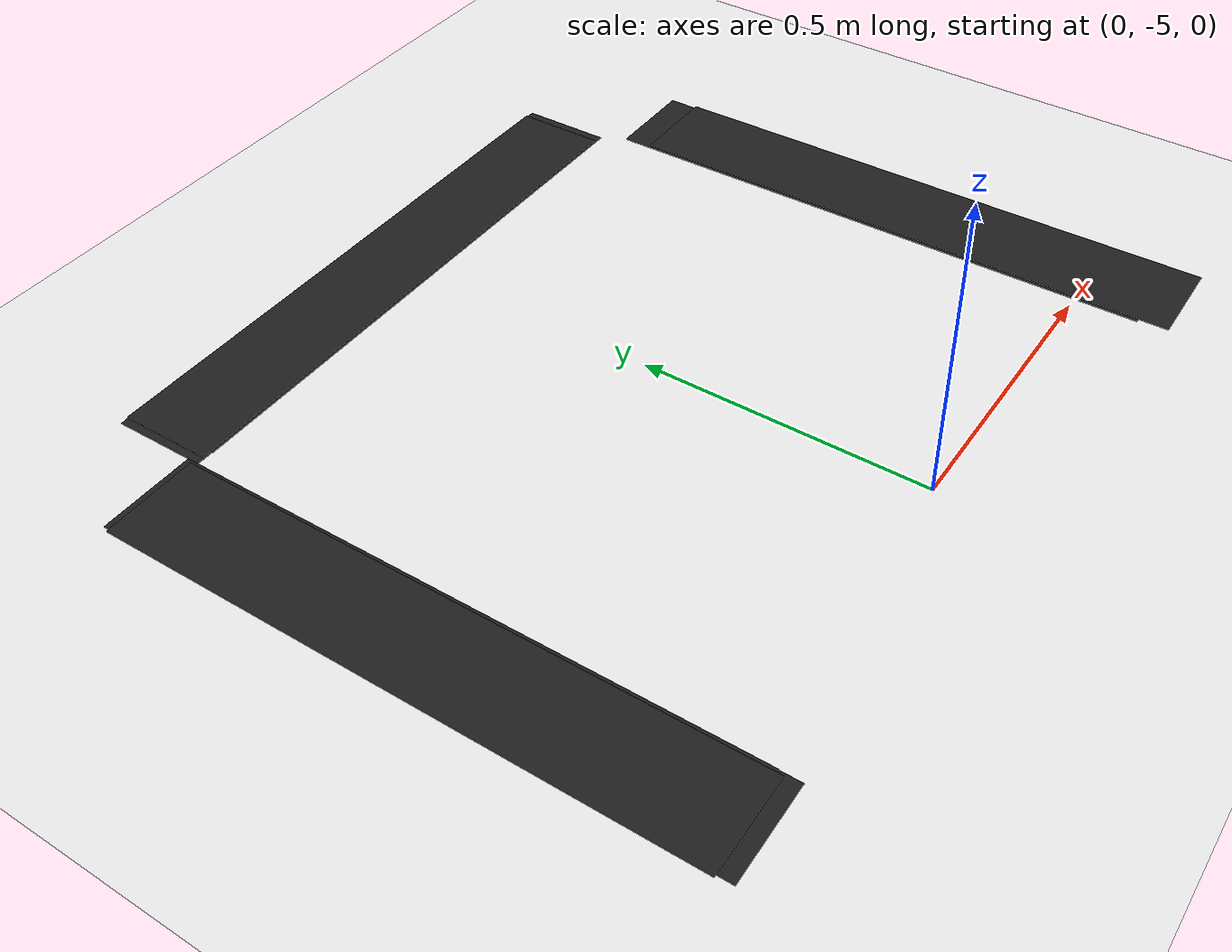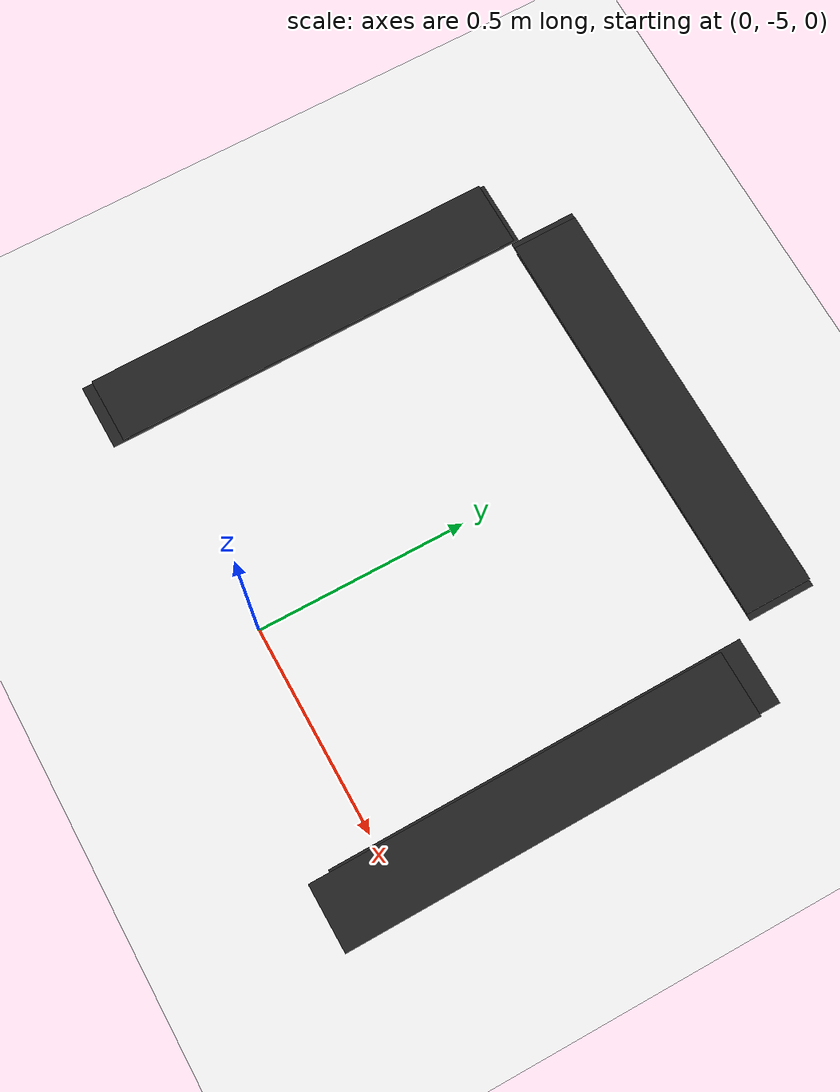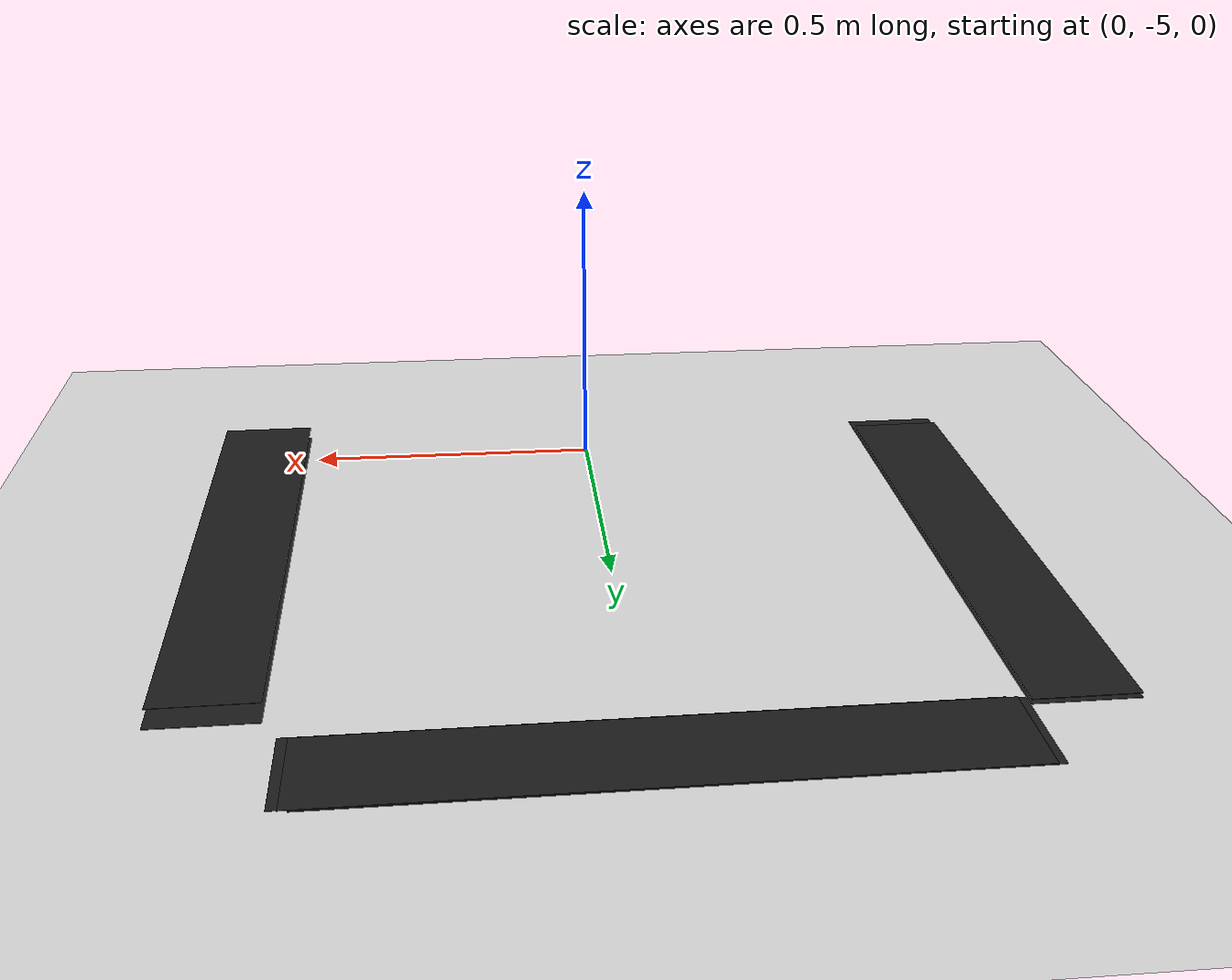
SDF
<sdf version="1.7">
 <world name="default">
  <model name="ground_plane">
   <static>1</static>
   <link name="link">
    <collision name="collision">
     <geometry><plane><normal>0 0 1</normal><size>100 100</size></plane></geometry>
     <surface>
      <contact><collide_bitmask>65535</collide_bitmask></contact>
      <friction><ode><mu>100</mu><mu2>50</mu2></ode></friction>
     </surface>
    </collision>
    <visual name="visual">
     <cast_shadows>0</cast_shadows>
     <geometry><plane><normal>0 0 1</normal><size>100 100</size></plane></geometry>
     <material>
      <script><uri>file://media/materials/scripts/gazebo.material</uri><name>Gazebo/White</name></script>
     </material>
    </visual>
   </link>
  </model>
  <model name="unit_box_clone_0_clone_clone_0_clone_clone_clone_1">
   <link name="link">
    <inertial>
     <mass>1</mass>
     <inertia>
      <ixx>0.166667</ixx>
      <ixy>0</ixy>
      <ixz>0</ixz>
      <iyy>0.166667</iyy>
      <iyz>0</iyz>
      <izz>0.166667</izz>
     </inertia>
    </inertial>
    <visual name="visual">
     <geometry><box><size>1 0.160776 0.000937</size></box></geometry>
     <material>
      <script><name>Gazebo/Black</name><uri>file://media/materials/scripts/gazebo.material</uri></script>
      <shader type="pixel"><normal_map>__default__</normal_map></shader>
      <ambient>0 0 0 1</ambient>
      <diffuse>0 0 0 1</diffuse>
      <specular>0.1 0.1 0.1 1</specular>
      <emissive>0 0 0 1</emissive>
     </material>
    </visual>
    <collision name="collision">
     <geometry><box><size>1 0.160776 0.000937</size></box></geometry>
     <surface>
      <friction>
       <ode><mu>1</mu><mu2>1</mu2><fdir1>0 0 0</fdir1><slip1>0</slip1><slip2>0</slip2></ode>
       <torsional>
        <coefficient>1</coefficient>
        <patch_radius>0</patch_radius>
        <surface_radius>0</surface_radius>
        <use_patch_radius>1</use_patch_radius>
        <ode><slip>0</slip></ode>
       </torsional>
      </friction>
      <bounce><restitution_coefficient>0</restitution_coefficient><threshold>1e+06</threshold></bounce>
      <contact>
       <collide_without_contact>0</collide_without_contact>
       <collide_without_contact_bitmask>1</collide_without_contact_bitmask>
       <collide_bitmask>1</collide_bitmask>
       <ode>
        <soft_cfm>0</soft_cfm>
        <soft_erp>0.2</soft_erp>
        <kp>1e+13</kp>
        <kd>1</kd>
        <max_vel>0.01</max_vel>
        <min_depth>0</min_depth>
       </ode>
       <bullet>
        <split_impulse>1</split_impulse>
        <split_impulse_penetration_threshold>-0.01</split_impulse_penetration_threshold>
        <soft_cfm>0</soft_cfm>
        <soft_erp>0.2</soft_erp>
        <kp>1e+13</kp>
        <kd>1</kd>
       </bullet>
      </contact>
     </surface>
    </collision>
   </link>
   <static>0</static>
   <pose>-0.613962 -4.59066 0.000408 -1e-06 -0.000122 -1.56169</pose>
  </model>
  <model name="unit_box_clone_0_clone_clone_0_clone_1">
   <link name="link">
    <inertial>
     <mass>1</mass>
     <inertia>
      <ixx>0.166667</ixx>
      <ixy>0</ixy>
      <ixz>0</ixz>
      <iyy>0.166667</iyy>
      <iyz>0</iyz>
      <izz>0.166667</izz>
     </inertia>
    </inertial>
    <visual name="visual">
     <geometry><box><size>1 0.160776 0.000937</size></box></geometry>
     <material>
      <script><name>Gazebo/Black</name><uri>file://media/materials/scripts/gazebo.material</uri></script>
      <shader type="pixel"><normal_map>__default__</normal_map></shader>
      <ambient>0 0 0 1</ambient>
      <diffuse>0 0 0 1</diffuse>
      <specular>0.1 0.1 0.1 1</specular>
      <emissive>0 0 0 1</emissive>
     </material>
    </visual>
    <collision name="collision">
     <geometry><box><size>1 0.160776 0.000937</size></box></geometry>
     <surface>
      <friction>
       <ode><mu>1</mu><mu2>1</mu2><fdir1>0 0 0</fdir1><slip1>0</slip1><slip2>0</slip2></ode>
       <torsional>
        <coefficient>1</coefficient>
        <patch_radius>0</patch_radius>
        <surface_radius>0</surface_radius>
        <use_patch_radius>1</use_patch_radius>
        <ode><slip>0</slip></ode>
       </torsional>
      </friction>
      <bounce><restitution_coefficient>0</restitution_coefficient><threshold>1e+06</threshold></bounce>
      <contact>
       <collide_without_contact>0</collide_without_contact>
       <collide_without_contact_bitmask>1</collide_without_contact_bitmask>
       <collide_bitmask>1</collide_bitmask>
       <ode>
        <soft_cfm>0</soft_cfm>
        <soft_erp>0.2</soft_erp>
        <kp>1e+13</kp>
        <kd>1</kd>
        <max_vel>0.01</max_vel>
        <min_depth>0</min_depth>
       </ode>
       <bullet>
        <split_impulse>1</split_impulse>
        <split_impulse_penetration_threshold>-0.01</split_impulse_penetration_threshold>
        <soft_cfm>0</soft_cfm>
        <soft_erp>0.2</soft_erp>
        <kp>1e+13</kp>
        <kd>1</kd>
       </bullet>
      </contact>
     </surface>
    </collision>
   </link>
   <static>0</static>
   <pose>-0.010714 -3.99133 0.001282 -2e-06 2.1e-05 0.007542</pose>
  </model>
  <model name="unit_box_clone_0_clone_clone_0_clone_1_clone_0">
   <link name="link">
    <inertial>
     <mass>1</mass>
     <inertia>
      <ixx>0.166667</ixx>
      <ixy>0</ixy>
      <ixz>0</ixz>
      <iyy>0.166667</iyy>
      <iyz>0</iyz>
      <izz>0.166667</izz>
     </inertia>
    </inertial>
    <visual name="visual">
     <geometry><box><size>1 0.160776 0.000937</size></box></geometry>
     <material>
      <script><name>Gazebo/Black</name><uri>file://media/materials/scripts/gazebo.material</uri></script>
      <shader type="pixel"><normal_map>__default__</normal_map></shader>
      <ambient>0 0 0 1</ambient>
      <diffuse>0 0 0 1</diffuse>
      <specular>0.1 0.1 0.1 1</specular>
      <emissive>0 0 0 1</emissive>
     </material>
    </visual>
    <collision name="collision">
     <geometry><box><size>1 0.160776 0.000937</size></box></geometry>
     <surface>
      <friction>
       <ode><mu>1</mu><mu2>1</mu2><fdir1>0 0 0</fdir1><slip1>0</slip1><slip2>0</slip2></ode>
       <torsional>
        <coefficient>1</coefficient>
        <patch_radius>0</patch_radius>
        <surface_radius>0</surface_radius>
        <use_patch_radius>1</use_patch_radius>
        <ode><slip>0</slip></ode>
       </torsional>
      </friction>
      <bounce><restitution_coefficient>0</restitution_coefficient><threshold>1e+06</threshold></bounce>
      <contact>
       <collide_without_contact>0</collide_without_contact>
       <collide_without_contact_bitmask>1</collide_without_contact_bitmask>
       <collide_bitmask>1</collide_bitmask>
       <ode>
        <soft_cfm>0</soft_cfm>
        <soft_erp>0.2</soft_erp>
        <kp>1e+13</kp>
        <kd>1</kd>
        <max_vel>0.01</max_vel>
        <min_depth>0</min_depth>
       </ode>
       <bullet>
        <split_impulse>1</split_impulse>
        <split_impulse_penetration_threshold>-0.01</split_impulse_penetration_threshold>
        <soft_cfm>0</soft_cfm>
        <soft_erp>0.2</soft_erp>
        <kp>1e+13</kp>
        <kd>1</kd>
       </bullet>
      </contact>
     </surface>
    </collision>
   </link>
   <static>0</static>
   <pose>-0.025652 -3.98888 0.002212 -3e-06 3.7e-05 0.006545</pose>
  </model>
  <model name="unit_box_clone_0_clone_clone_0_clone_1_clone_1">
   <link name="link">
    <inertial>
     <mass>1</mass>
     <inertia>
      <ixx>0.166667</ixx>
      <ixy>0</ixy>
      <ixz>0</ixz>
      <iyy>0.166667</iyy>
      <iyz>0</iyz>
      <izz>0.166667</izz>
     </inertia>
    </inertial>
    <visual name="visual">
     <geometry><box><size>1 0.160776 0.000937</size></box></geometry>
     <material>
      <script><name>Gazebo/Black</name><uri>file://media/materials/scripts/gazebo.material</uri></script>
      <shader type="pixel"><normal_map>__default__</normal_map></shader>
      <ambient>0 0 0 1</ambient>
      <diffuse>0 0 0 1</diffuse>
      <specular>0.1 0.1 0.1 1</specular>
      <emissive>0 0 0 1</emissive>
     </material>
    </visual>
    <collision name="collision">
     <geometry><box><size>1 0.160776 0.000937</size></box></geometry>
     <surface>
      <friction>
       <ode><mu>1</mu><mu2>1</mu2><fdir1>0 0 0</fdir1><slip1>0</slip1><slip2>0</slip2></ode>
       <torsional>
        <coefficient>1</coefficient>
        <patch_radius>0</patch_radius>
        <surface_radius>0</surface_radius>
        <use_patch_radius>1</use_patch_radius>
        <ode><slip>0</slip></ode>
       </torsional>
      </friction>
      <bounce><restitution_coefficient>0</restitution_coefficient><threshold>1e+06</threshold></bounce>
      <contact>
       <collide_without_contact>0</collide_without_contact>
       <collide_without_contact_bitmask>1</collide_without_contact_bitmask>
       <collide_bitmask>1</collide_bitmask>
       <ode>
        <soft_cfm>0</soft_cfm>
        <soft_erp>0.2</soft_erp>
        <kp>1e+13</kp>
        <kd>1</kd>
        <max_vel>0.01</max_vel>
        <min_depth>0</min_depth>
       </ode>
       <bullet>
        <split_impulse>1</split_impulse>
        <split_impulse_penetration_threshold>-0.01</split_impulse_penetration_threshold>
        <soft_cfm>0</soft_cfm>
        <soft_erp>0.2</soft_erp>
        <kp>1e+13</kp>
        <kd>1</kd>
       </bullet>
      </contact>
     </surface>
    </collision>
   </link>
   <static>0</static>
   <pose>-0.038355 -3.98888 0.00041 -1e-06 -0.000117 0.008344</pose>
  </model>
  <model name="unit_box_clone_0_clone_clone_0_clone_clone_clone_1_clone">
   <link name="link">
    <inertial>
     <mass>1</mass>
     <inertia>
      <ixx>0.166667</ixx>
      <ixy>0</ixy>
      <ixz>0</ixz>
      <iyy>0.166667</iyy>
      <iyz>0</iyz>
      <izz>0.166667</izz>
     </inertia>
    </inertial>
    <visual name="visual">
     <geometry><box><size>1 0.160776 0.000937</size></box></geometry>
     <material>
      <script><name>Gazebo/Black</name><uri>file://media/materials/scripts/gazebo.material</uri></script>
      <shader type="pixel"><normal_map>__default__</normal_map></shader>
      <ambient>0 0 0 1</ambient>
      <diffuse>0 0 0 1</diffuse>
      <specular>0.1 0.1 0.1 1</specular>
      <emissive>0 0 0 1</emissive>
     </material>
    </visual>
    <collision name="collision">
     <geometry><box><size>1 0.160776 0.000937</size></box></geometry>
     <surface>
      <friction>
       <ode><mu>1</mu><mu2>1</mu2><fdir1>0 0 0</fdir1><slip1>0</slip1><slip2>0</slip2></ode>
       <torsional>
        <coefficient>1</coefficient>
        <patch_radius>0</patch_radius>
        <surface_radius>0</surface_radius>
        <use_patch_radius>1</use_patch_radius>
        <ode><slip>0</slip></ode>
       </torsional>
      </friction>
      <bounce><restitution_coefficient>0</restitution_coefficient><threshold>1e+06</threshold></bounce>
      <contact>
       <collide_without_contact>0</collide_without_contact>
       <collide_without_contact_bitmask>1</collide_without_contact_bitmask>
       <collide_bitmask>1</collide_bitmask>
       <ode>
        <soft_cfm>0</soft_cfm>
        <soft_erp>0.2</soft_erp>
        <kp>1e+13</kp>
        <kd>1</kd>
        <max_vel>0.01</max_vel>
        <min_depth>0</min_depth>
       </ode>
       <bullet>
        <split_impulse>1</split_impulse>
        <split_impulse_penetration_threshold>-0.01</split_impulse_penetration_threshold>
        <soft_cfm>0</soft_cfm>
        <soft_erp>0.2</soft_erp>
        <kp>1e+13</kp>
        <kd>1</kd>
       </bullet>
      </contact>
     </surface>
    </collision>
   </link>
   <static>0</static>
   <pose>-0.61396 -4.55531 0.001284 -2e-06 1e-06 -1.56126</pose>
  </model>
  <model name="unit_box_clone_0_clone_clone_0_clone_clone_clone_1_clone_0">
   <link name="link">
    <inertial>
     <mass>1</mass>
     <inertia>
      <ixx>0.166667</ixx>
      <ixy>0</ixy>
      <ixz>0</ixz>
      <iyy>0.166667</iyy>
      <iyz>0</iyz>
      <izz>0.166667</izz>
     </inertia>
    </inertial>
    <visual name="visual">
     <geometry><box><size>1 0.160776 0.000937</size></box></geometry>
     <material>
      <script><name>Gazebo/Black</name><uri>file://media/materials/scripts/gazebo.material</uri></script>
      <shader type="pixel"><normal_map>__default__</normal_map></shader>
      <ambient>0 0 0 1</ambient>
      <diffuse>0 0 0 1</diffuse>
      <specular>0.1 0.1 0.1 1</specular>
      <emissive>0 0 0 1</emissive>
     </material>
    </visual>
    <collision name="collision">
     <geometry><box><size>1 0.160776 0.000937</size></box></geometry>
     <surface>
      <friction>
       <ode><mu>1</mu><mu2>1</mu2><fdir1>0 0 0</fdir1><slip1>0</slip1><slip2>0</slip2></ode>
       <torsional>
        <coefficient>1</coefficient>
        <patch_radius>0</patch_radius>
        <surface_radius>0</surface_radius>
        <use_patch_radius>1</use_patch_radius>
        <ode><slip>0</slip></ode>
       </torsional>
      </friction>
      <bounce><restitution_coefficient>0</restitution_coefficient><threshold>1e+06</threshold></bounce>
      <contact>
       <collide_without_contact>0</collide_without_contact>
       <collide_without_contact_bitmask>1</collide_without_contact_bitmask>
       <collide_bitmask>1</collide_bitmask>
       <ode>
        <soft_cfm>0</soft_cfm>
        <soft_erp>0.2</soft_erp>
        <kp>1e+13</kp>
        <kd>1</kd>
        <max_vel>0.01</max_vel>
        <min_depth>0</min_depth>
       </ode>
       <bullet>
        <split_impulse>1</split_impulse>
        <split_impulse_penetration_threshold>-0.01</split_impulse_penetration_threshold>
        <soft_cfm>0</soft_cfm>
        <soft_erp>0.2</soft_erp>
        <kp>1e+13</kp>
        <kd>1</kd>
       </bullet>
      </contact>
     </surface>
    </collision>
   </link>
   <static>0</static>
   <pose>-0.619035 -4.56528 0.002212 -2e-06 1.9e-05 -1.56165</pose>
  </model>
  <model name="unit_box_clone_0_clone_clone_0_clone_clone_clone_2_clone_0">
   <link name="link">
    <inertial>
     <mass>1</mass>
     <inertia>
      <ixx>0.166667</ixx>
      <ixy>0</ixy>
      <ixz>0</ixz>
      <iyy>0.166667</iyy>
      <iyz>0</iyz>
      <izz>0.166667</izz>
     </inertia>
    </inertial>
    <visual name="visual">
     <geometry><box><size>1 0.160776 0.000937</size></box></geometry>
     <material>
      <script><name>Gazebo/Black</name><uri>file://media/materials/scripts/gazebo.material</uri></script>
      <shader type="pixel"><normal_map>__default__</normal_map></shader>
      <ambient>0 0 0 1</ambient>
      <diffuse>0 0 0 1</diffuse>
      <specular>0.1 0.1 0.1 1</specular>
      <emissive>0 0 0 1</emissive>
     </material>
    </visual>
    <collision name="collision">
     <geometry><box><size>1 0.160776 0.000937</size></box></geometry>
     <surface>
      <friction>
       <ode><mu>1</mu><mu2>1</mu2><fdir1>0 0 0</fdir1><slip1>0</slip1><slip2>0</slip2></ode>
       <torsional>
        <coefficient>1</coefficient>
        <patch_radius>0</patch_radius>
        <surface_radius>0</surface_radius>
        <use_patch_radius>1</use_patch_radius>
        <ode><slip>0</slip></ode>
       </torsional>
      </friction>
      <bounce><restitution_coefficient>0</restitution_coefficient><threshold>1e+06</threshold></bounce>
      <contact>
       <collide_without_contact>0</collide_without_contact>
       <collide_without_contact_bitmask>1</collide_without_contact_bitmask>
       <collide_bitmask>1</collide_bitmask>
       <ode>
        <soft_cfm>0</soft_cfm>
        <soft_erp>0.2</soft_erp>
        <kp>1e+13</kp>
        <kd>1</kd>
        <max_vel>0.01</max_vel>
        <min_depth>0</min_depth>
       </ode>
       <bullet>
        <split_impulse>1</split_impulse>
        <split_impulse_penetration_threshold>-0.01</split_impulse_penetration_threshold>
        <soft_cfm>0</soft_cfm>
        <soft_erp>0.2</soft_erp>
        <kp>1e+13</kp>
        <kd>1</kd>
       </bullet>
      </contact>
     </surface>
    </collision>
   </link>
   <static>0</static>
   <pose>0.598213 -4.60818 0.000265 2e-06 0.000407 -1.56154</pose>
  </model>
  <model name="unit_box_clone_0_clone_clone_0_clone_clone_clone_2_clone_1">
   <link name="link">
    <inertial>
     <mass>1</mass>
     <inertia>
      <ixx>0.166667</ixx>
      <ixy>0</ixy>
      <ixz>0</ixz>
      <iyy>0.166667</iyy>
      <iyz>0</iyz>
      <izz>0.166667</izz>
     </inertia>
    </inertial>
    <visual name="visual">
     <geometry><box><size>1 0.160776 0.000937</size></box></geometry>
     <material>
      <script><name>Gazebo/Black</name><uri>file://media/materials/scripts/gazebo.material</uri></script>
      <shader type="pixel"><normal_map>__default__</normal_map></shader>
      <ambient>0 0 0 1</ambient>
      <diffuse>0 0 0 1</diffuse>
      <specular>0.1 0.1 0.1 1</specular>
      <emissive>0 0 0 1</emissive>
     </material>
    </visual>
    <collision name="collision">
     <geometry><box><size>1 0.160776 0.000937</size></box></geometry>
     <surface>
      <friction>
       <ode><mu>1</mu><mu2>1</mu2><fdir1>0 0 0</fdir1><slip1>0</slip1><slip2>0</slip2></ode>
       <torsional>
        <coefficient>1</coefficient>
        <patch_radius>0</patch_radius>
        <surface_radius>0</surface_radius>
        <use_patch_radius>1</use_patch_radius>
        <ode><slip>0</slip></ode>
       </torsional>
      </friction>
      <bounce><restitution_coefficient>0</restitution_coefficient><threshold>1e+06</threshold></bounce>
      <contact>
       <collide_without_contact>0</collide_without_contact>
       <collide_without_contact_bitmask>1</collide_without_contact_bitmask>
       <collide_bitmask>1</collide_bitmask>
       <ode>
        <soft_cfm>0</soft_cfm>
        <soft_erp>0.2</soft_erp>
        <kp>1e+13</kp>
        <kd>1</kd>
        <max_vel>0.01</max_vel>
        <min_depth>0</min_depth>
       </ode>
       <bullet>
        <split_impulse>1</split_impulse>
        <split_impulse_penetration_threshold>-0.01</split_impulse_penetration_threshold>
        <soft_cfm>0</soft_cfm>
        <soft_erp>0.2</soft_erp>
        <kp>1e+13</kp>
        <kd>1</kd>
       </bullet>
      </contact>
     </surface>
    </collision>
   </link>
   <static>0</static>
   <pose>0.603983 -4.65833 0.001016 5e-06 3.6e-05 -1.56085</pose>
  </model>
 </world>
</sdf>
